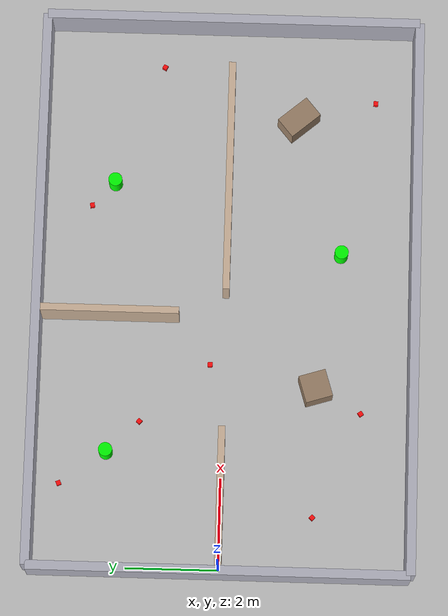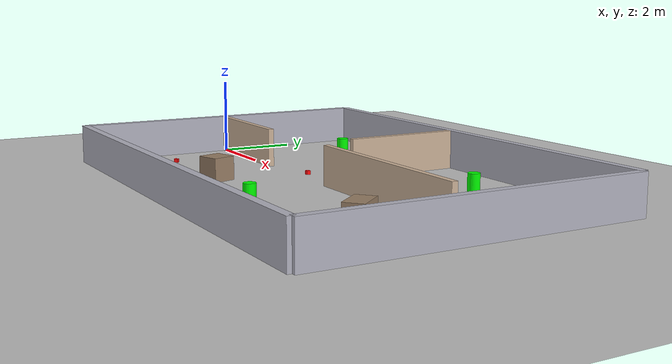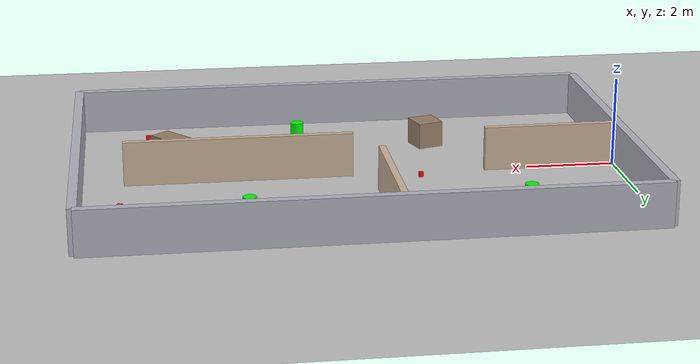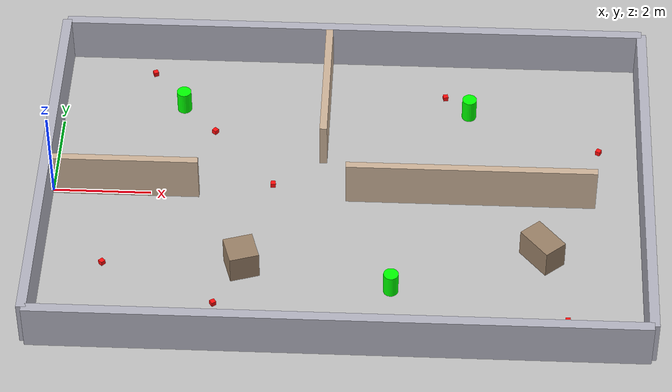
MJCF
<mujoco model="vlm_exploration">
  <compiler angle="radian" coordinate="local"/>
  <option timestep="0.002" gravity="0 0 -9.81"/>

  <asset>
    <texture name="grid" type="2d" builtin="checker"
             rgb1="0.8 0.8 0.8" rgb2="0.7 0.7 0.7"
             width="512" height="512"/>
    <material name="ground_mat" texture="grid" texrepeat="10 10"/>
    <material name="wall_mat" rgba="0.7 0.7 0.75 1"/>
    <material name="divider_mat" rgba="0.8 0.7 0.6 1"/>
    <material name="green_mat" rgba="0.0 1.0 0.0 1" specular="0.3"/>
    <material name="obstacle_mat" rgba="0.6 0.5 0.4 1"/>
    <material name="red_mat" rgba="1.0 0.05 0.05 1" specular="0.3"/>
  </asset>

  <worldbody>
    <light pos="0 0 10" dir="-0.5 0.1 -0.9" diffuse="0.8 0.8 0.8" castshadow="true"/>
    <geom name="ground" type="plane" size="50 50 0.1" material="ground_mat"
          contype="1" conaffinity="1"/>

    <!-- === Outer walls === -->
    <!-- North wall: SDF size 12.2 0.2 1.0 -> half 6.1 0.1 0.5 -->
    <geom name="wall_north" type="box" pos="6.0 4.1 0.5"
          size="6.1 0.1 0.5" material="wall_mat"
          contype="1" conaffinity="1"/>
    <!-- South wall -->
    <geom name="wall_south" type="box" pos="6.0 -4.1 0.5"
          size="6.1 0.1 0.5" material="wall_mat"
          contype="1" conaffinity="1"/>
    <!-- West wall: SDF size 0.2 8.2 1.0 -> half 0.1 4.1 0.5 -->
    <geom name="wall_west" type="box" pos="-0.1 0 0.5"
          size="0.1 4.1 0.5" material="wall_mat"
          contype="1" conaffinity="1"/>
    <!-- East wall -->
    <geom name="wall_east" type="box" pos="12.1 0 0.5"
          size="0.1 4.1 0.5" material="wall_mat"
          contype="1" conaffinity="1"/>

    <!-- === Central corridor dividers === -->
    <!-- West segment: SDF size 3.0 0.15 1.0 -> half 1.5 0.075 0.5 -->
    <geom name="divider_h_west" type="box" pos="1.5 0 0.5"
          size="1.5 0.075 0.5" material="divider_mat"
          contype="1" conaffinity="1"/>
    <!-- East segment: SDF size 5.1 0.15 1.0 -> half 2.55 0.075 0.5 -->
    <geom name="divider_h_east" type="box" pos="8.55 0 0.5"
          size="2.55 0.075 0.5" material="divider_mat"
          contype="1" conaffinity="1"/>
    <!-- Vertical divider (Room A / Room B): SDF size 0.15 3.0 1.0 -> half 0.075 1.5 0.5 -->
    <geom name="divider_v_north" type="box" pos="5.5 2.5 0.5"
          size="0.075 1.5 0.5" material="divider_mat"
          contype="1" conaffinity="1"/>

    <!-- === Green marker cylinders (VLM targets) === -->
    <!-- Green Marker 1: Room A (north-west) -->
    <geom name="green_marker_1" type="cylinder" pos="2.5 2.5 0.25"
          size="0.15 0.25" material="green_mat"
          contype="1" conaffinity="1"/>
    <!-- Green Marker 2: Room B center -->
    <geom name="green_marker_2" type="cylinder" pos="8.5 2.5 0.25"
          size="0.15 0.25" material="green_mat"
          contype="1" conaffinity="1"/>
    <!-- Green Marker 3: Room C/D (south) -->
    <geom name="green_marker_3" type="cylinder" pos="7.0 -2.5 0.25"
          size="0.15 0.25" material="green_mat"
          contype="1" conaffinity="1"/>

    <!-- === Box obstacles === -->
    <!-- box_obstacle_1: SDF size 0.6 0.6 0.6 -> half 0.3 0.3 0.3, yaw=0.3 -->
    <geom name="box_obstacle_1" type="box" pos="4.0 -2.0 0.3"
          size="0.3 0.3 0.3" euler="0 0 0.3" material="obstacle_mat"
          contype="1" conaffinity="1"/>
    <!-- box_obstacle_2: SDF size 0.5 0.8 0.6 -> half 0.25 0.4 0.3, yaw=0.7 -->
    <geom name="box_obstacle_2" type="box" pos="10.0 -1.5 0.3"
          size="0.25 0.4 0.3" euler="0 0 0.7" material="obstacle_mat"
          contype="1" conaffinity="1"/>

    <!-- === Red blocks (0.1m cubes -> half-size 0.05) === -->
    <!-- Room A: tucked against north wall -->
    <geom name="red_block_1" type="box" pos="1.8 3.5 0.05"
          size="0.05 0.05 0.05" euler="0 0 0.4" material="red_mat"
          contype="1" conaffinity="1"/>
    <!-- Room A: floor center -->
    <geom name="red_block_2" type="box" pos="3.2 1.8 0.05"
          size="0.05 0.05 0.05" euler="0 0 0.9" material="red_mat"
          contype="1" conaffinity="1"/>
    <!-- Room B: west side (near divider) -->
    <geom name="red_block_3" type="box" pos="8.0 3.0 0.05"
          size="0.05 0.05 0.05" euler="0 0 0.2" material="red_mat"
          contype="1" conaffinity="1"/>
    <!-- Room B: east side -->
    <geom name="red_block_4" type="box" pos="11.2 1.5 0.05"
          size="0.05 0.05 0.05" euler="0 0 1.1" material="red_mat"
          contype="1" conaffinity="1"/>
    <!-- Corridor: on the floor mid-passage -->
    <geom name="red_block_5" type="box" pos="4.5 0.3 0.05"
          size="0.05 0.05 0.05" material="red_mat"
          contype="1" conaffinity="1"/>
    <!-- Room C/D south: near box_obstacle_1 -->
    <geom name="red_block_6" type="box" pos="3.5 -3.0 0.05"
          size="0.05 0.05 0.05" euler="0 0 0.6" material="red_mat"
          contype="1" conaffinity="1"/>
    <!-- Room D: far east -->
    <geom name="red_block_7" type="box" pos="10.5 -3.2 0.05"
          size="0.05 0.05 0.05" euler="0 0 1.5" material="red_mat"
          contype="1" conaffinity="1"/>
    <!-- Room C: west side -->
    <geom name="red_block_8" type="box" pos="1.2 -2.0 0.05"
          size="0.05 0.05 0.05" euler="0 0 0.8" material="red_mat"
          contype="1" conaffinity="1"/>
  </worldbody>
</mujoco>
